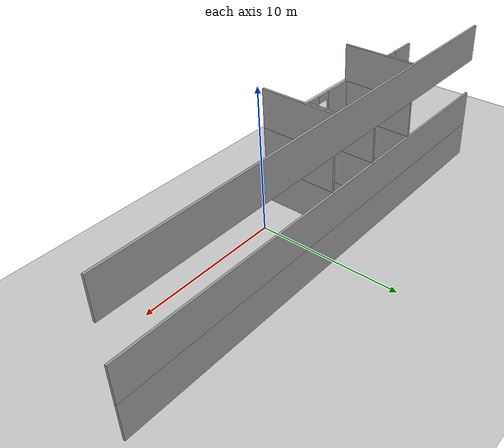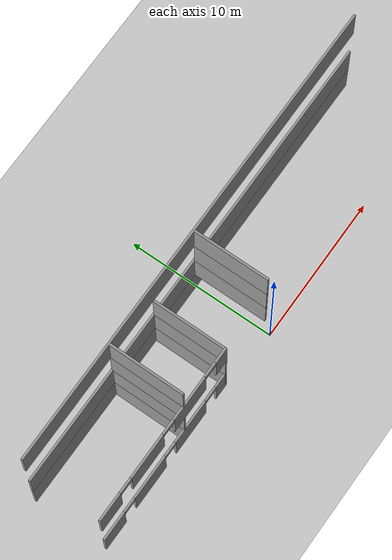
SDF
<sdf version="1.7">
 <world name="default">
  <model name="ground_plane">
   <static>1</static>
   <link name="link">
    <collision name="collision">
     <geometry><plane><normal>0 0 1</normal><size>100 100</size></plane></geometry>
     <surface>
      <contact><collide_bitmask>65535</collide_bitmask></contact>
      <friction><ode><mu>100</mu><mu2>50</mu2></ode></friction>
     </surface>
    </collision>
    <visual name="visual">
     <cast_shadows>0</cast_shadows>
     <geometry><plane><normal>0 0 1</normal><size>100 100</size></plane></geometry>
     <material>
      <script><uri>file://media/materials/scripts/gazebo.material</uri><name>Gazebo/Grey</name></script>
     </material>
    </visual>
   </link>
  </model>
  <model name="floor4plan_transp">
   <link name="Wall_0">
    <pose>0 6.175 0 0 -0 0</pose>
    <visual name="Wall_0_Visual">
     <pose>0 0 1.25 0 -0 0</pose>
     <geometry><box><size>32 0.15 2.5</size></box></geometry>
     <material>
      <script><uri>file://media/materials/scripts/gazebo.material</uri><name>Gazebo/Grey</name></script>
      <ambient>1 1 1 1</ambient>
      <shader type="pixel"/>
     </material>
     <meta><layer>0</layer></meta>
    </visual>
    <collision name="Wall_0_Collision">
     <pose>0 0 1.25 0 -0 0</pose>
     <geometry><box><size>32 0.15 2.5</size></box></geometry>
     <surface>
      <friction>
       <ode><mu>1</mu><mu2>1</mu2><fdir1>0 0 0</fdir1><slip1>0</slip1><slip2>0</slip2></ode>
       <torsional>
        <coefficient>1</coefficient>
        <patch_radius>0</patch_radius>
        <surface_radius>0</surface_radius>
        <use_patch_radius>1</use_patch_radius>
        <ode><slip>0</slip></ode>
       </torsional>
      </friction>
      <bounce><restitution_coefficient>0</restitution_coefficient><threshold>1e+06</threshold></bounce>
      <contact>
       <collide_without_contact>0</collide_without_contact>
       <collide_without_contact_bitmask>1</collide_without_contact_bitmask>
       <collide_bitmask>1</collide_bitmask>
       <ode>
        <soft_cfm>0</soft_cfm>
        <soft_erp>0.2</soft_erp>
        <kp>1e+13</kp>
        <kd>1</kd>
        <max_vel>0.01</max_vel>
        <min_depth>0</min_depth>
       </ode>
       <bullet>
        <split_impulse>1</split_impulse>
        <split_impulse_penetration_threshold>-0.01</split_impulse_penetration_threshold>
        <soft_cfm>0</soft_cfm>
        <soft_erp>0.2</soft_erp>
        <kp>1e+13</kp>
        <kd>1</kd>
       </bullet>
      </contact>
     </surface>
    </collision>
   </link>
   <link name="Wall_100">
    <pose>0 6.175 7.5 0 -0 0</pose>
    <visual name="Wall_100_Visual">
     <pose>0 0 1.25 0 -0 0</pose>
     <geometry><box><size>32 0.15 2.5</size></box></geometry>
     <material>
      <script><uri>file://media/materials/scripts/gazebo.material</uri><name>Gazebo/Grey</name></script>
      <ambient>1 1 1 1</ambient>
      <shader type="pixel"/>
     </material>
     <meta><layer>3</layer></meta>
    </visual>
    <collision name="Wall_100_Collision">
     <pose>0 0 1.25 0 -0 0</pose>
     <geometry><box><size>32 0.15 2.5</size></box></geometry>
     <surface>
      <friction>
       <ode><mu>1</mu><mu2>1</mu2><fdir1>0 0 0</fdir1><slip1>0</slip1><slip2>0</slip2></ode>
       <torsional>
        <coefficient>1</coefficient>
        <patch_radius>0</patch_radius>
        <surface_radius>0</surface_radius>
        <use_patch_radius>1</use_patch_radius>
        <ode><slip>0</slip></ode>
       </torsional>
      </friction>
      <bounce><restitution_coefficient>0</restitution_coefficient><threshold>1e+06</threshold></bounce>
      <contact>
       <collide_without_contact>0</collide_without_contact>
       <collide_without_contact_bitmask>1</collide_without_contact_bitmask>
       <collide_bitmask>1</collide_bitmask>
       <ode>
        <soft_cfm>0</soft_cfm>
        <soft_erp>0.2</soft_erp>
        <kp>1e+13</kp>
        <kd>1</kd>
        <max_vel>0.01</max_vel>
        <min_depth>0</min_depth>
       </ode>
       <bullet>
        <split_impulse>1</split_impulse>
        <split_impulse_penetration_threshold>-0.01</split_impulse_penetration_threshold>
        <soft_cfm>0</soft_cfm>
        <soft_erp>0.2</soft_erp>
        <kp>1e+13</kp>
        <kd>1</kd>
       </bullet>
      </contact>
     </surface>
    </collision>
   </link>
   <link name="Wall_108">
    <pose>-8.04832 3.67238 7.5 0 0 -1.5708</pose>
    <visual name="Wall_108_Visual">
     <pose>0 0 1.25 0 -0 0</pose>
     <geometry><box><size>5 0.15 2.5</size></box></geometry>
     <material>
      <script><uri>file://media/materials/scripts/gazebo.material</uri><name>Gazebo/Grey</name></script>
      <ambient>1 1 1 1</ambient>
      <shader type="pixel"/>
     </material>
     <meta><layer>3</layer></meta>
    </visual>
    <collision name="Wall_108_Collision">
     <pose>0 0 1.25 0 -0 0</pose>
     <geometry><box><size>5 0.15 2.5</size></box></geometry>
     <surface>
      <friction>
       <ode><mu>1</mu><mu2>1</mu2><fdir1>0 0 0</fdir1><slip1>0</slip1><slip2>0</slip2></ode>
       <torsional>
        <coefficient>1</coefficient>
        <patch_radius>0</patch_radius>
        <surface_radius>0</surface_radius>
        <use_patch_radius>1</use_patch_radius>
        <ode><slip>0</slip></ode>
       </torsional>
      </friction>
      <bounce><restitution_coefficient>0</restitution_coefficient><threshold>1e+06</threshold></bounce>
      <contact>
       <collide_without_contact>0</collide_without_contact>
       <collide_without_contact_bitmask>1</collide_without_contact_bitmask>
       <collide_bitmask>1</collide_bitmask>
       <ode>
        <soft_cfm>0</soft_cfm>
        <soft_erp>0.2</soft_erp>
        <kp>1e+13</kp>
        <kd>1</kd>
        <max_vel>0.01</max_vel>
        <min_depth>0</min_depth>
       </ode>
       <bullet>
        <split_impulse>1</split_impulse>
        <split_impulse_penetration_threshold>-0.01</split_impulse_penetration_threshold>
        <soft_cfm>0</soft_cfm>
        <soft_erp>0.2</soft_erp>
        <kp>1e+13</kp>
        <kd>1</kd>
       </bullet>
      </contact>
     </surface>
    </collision>
   </link>
   <link name="Wall_110">
    <pose>-0.021996 3.62612 7.5 0 0 -1.5708</pose>
    <visual name="Wall_110_Visual">
     <pose>0 0 1.25 0 -0 0</pose>
     <geometry><box><size>5 0.15 2.5</size></box></geometry>
     <material>
      <script><uri>file://media/materials/scripts/gazebo.material</uri><name>Gazebo/Grey</name></script>
      <ambient>1 1 1 1</ambient>
      <shader type="pixel"/>
     </material>
     <meta><layer>3</layer></meta>
    </visual>
    <collision name="Wall_110_Collision">
     <pose>0 0 1.25 0 -0 0</pose>
     <geometry><box><size>5 0.15 2.5</size></box></geometry>
     <surface>
      <friction>
       <ode><mu>1</mu><mu2>1</mu2><fdir1>0 0 0</fdir1><slip1>0</slip1><slip2>0</slip2></ode>
       <torsional>
        <coefficient>1</coefficient>
        <patch_radius>0</patch_radius>
        <surface_radius>0</surface_radius>
        <use_patch_radius>1</use_patch_radius>
        <ode><slip>0</slip></ode>
       </torsional>
      </friction>
      <bounce><restitution_coefficient>0</restitution_coefficient><threshold>1e+06</threshold></bounce>
      <contact>
       <collide_without_contact>0</collide_without_contact>
       <collide_without_contact_bitmask>1</collide_without_contact_bitmask>
       <collide_bitmask>1</collide_bitmask>
       <ode>
        <soft_cfm>0</soft_cfm>
        <soft_erp>0.2</soft_erp>
        <kp>1e+13</kp>
        <kd>1</kd>
        <max_vel>0.01</max_vel>
        <min_depth>0</min_depth>
       </ode>
       <bullet>
        <split_impulse>1</split_impulse>
        <split_impulse_penetration_threshold>-0.01</split_impulse_penetration_threshold>
        <soft_cfm>0</soft_cfm>
        <soft_erp>0.2</soft_erp>
        <kp>1e+13</kp>
        <kd>1</kd>
       </bullet>
      </contact>
     </surface>
    </collision>
   </link>
   <link name="Wall_17">
    <pose>-8.04832 3.67238 0 0 0 -1.5708</pose>
    <visual name="Wall_17_Visual">
     <pose>0 0 1.25 0 -0 0</pose>
     <geometry><box><size>5 0.15 2.5</size></box></geometry>
     <material>
      <script><uri>file://media/materials/scripts/gazebo.material</uri><name>Gazebo/Grey</name></script>
      <ambient>1 1 1 1</ambient>
      <shader type="pixel"/>
     </material>
     <meta><layer>0</layer></meta>
    </visual>
    <collision name="Wall_17_Collision">
     <pose>0 0 1.25 0 -0 0</pose>
     <geometry><box><size>5 0.15 2.5</size></box></geometry>
     <surface>
      <friction>
       <ode><mu>1</mu><mu2>1</mu2><fdir1>0 0 0</fdir1><slip1>0</slip1><slip2>0</slip2></ode>
       <torsional>
        <coefficient>1</coefficient>
        <patch_radius>0</patch_radius>
        <surface_radius>0</surface_radius>
        <use_patch_radius>1</use_patch_radius>
        <ode><slip>0</slip></ode>
       </torsional>
      </friction>
      <bounce><restitution_coefficient>0</restitution_coefficient><threshold>1e+06</threshold></bounce>
      <contact>
       <collide_without_contact>0</collide_without_contact>
       <collide_without_contact_bitmask>1</collide_without_contact_bitmask>
       <collide_bitmask>1</collide_bitmask>
       <ode>
        <soft_cfm>0</soft_cfm>
        <soft_erp>0.2</soft_erp>
        <kp>1e+13</kp>
        <kd>1</kd>
        <max_vel>0.01</max_vel>
        <min_depth>0</min_depth>
       </ode>
       <bullet>
        <split_impulse>1</split_impulse>
        <split_impulse_penetration_threshold>-0.01</split_impulse_penetration_threshold>
        <soft_cfm>0</soft_cfm>
        <soft_erp>0.2</soft_erp>
        <kp>1e+13</kp>
        <kd>1</kd>
       </bullet>
      </contact>
     </surface>
    </collision>
   </link>
   <link name="Wall_19">
    <pose>-4.01646 3.64183 0 0 0 -1.5708</pose>
    <visual name="Wall_19_Visual">
     <pose>0 0 1.25 0 -0 0</pose>
     <geometry><box><size>5 0.15 2.5</size></box></geometry>
     <material>
      <script><uri>file://media/materials/scripts/gazebo.material</uri><name>Gazebo/Grey</name></script>
      <ambient>1 1 1 1</ambient>
      <shader type="pixel"/>
     </material>
     <meta><layer>0</layer></meta>
    </visual>
    <collision name="Wall_19_Collision">
     <pose>0 0 1.25 0 -0 0</pose>
     <geometry><box><size>5 0.15 2.5</size></box></geometry>
     <surface>
      <friction>
       <ode><mu>1</mu><mu2>1</mu2><fdir1>0 0 0</fdir1><slip1>0</slip1><slip2>0</slip2></ode>
       <torsional>
        <coefficient>1</coefficient>
        <patch_radius>0</patch_radius>
        <surface_radius>0</surface_radius>
        <use_patch_radius>1</use_patch_radius>
        <ode><slip>0</slip></ode>
       </torsional>
      </friction>
      <bounce><restitution_coefficient>0</restitution_coefficient><threshold>1e+06</threshold></bounce>
      <contact>
       <collide_without_contact>0</collide_without_contact>
       <collide_without_contact_bitmask>1</collide_without_contact_bitmask>
       <collide_bitmask>1</collide_bitmask>
       <ode>
        <soft_cfm>0</soft_cfm>
        <soft_erp>0.2</soft_erp>
        <kp>1e+13</kp>
        <kd>1</kd>
        <max_vel>0.01</max_vel>
        <min_depth>0</min_depth>
       </ode>
       <bullet>
        <split_impulse>1</split_impulse>
        <split_impulse_penetration_threshold>-0.01</split_impulse_penetration_threshold>
        <soft_cfm>0</soft_cfm>
        <soft_erp>0.2</soft_erp>
        <kp>1e+13</kp>
        <kd>1</kd>
       </bullet>
      </contact>
     </surface>
    </collision>
   </link>
   <link name="Wall_50">
    <pose>0 6.175 2.5 0 -0 0</pose>
    <visual name="Wall_50_Visual">
     <pose>0 0 1.25 0 -0 0</pose>
     <geometry><box><size>32 0.15 2.5</size></box></geometry>
     <material>
      <script><uri>file://media/materials/scripts/gazebo.material</uri><name>Gazebo/Grey</name></script>
      <ambient>1 1 1 1</ambient>
      <shader type="pixel"/>
     </material>
     <meta><layer>1</layer></meta>
    </visual>
    <collision name="Wall_50_Collision">
     <pose>0 0 1.25 0 -0 0</pose>
     <geometry><box><size>32 0.15 2.5</size></box></geometry>
     <surface>
      <friction>
       <ode><mu>1</mu><mu2>1</mu2><fdir1>0 0 0</fdir1><slip1>0</slip1><slip2>0</slip2></ode>
       <torsional>
        <coefficient>1</coefficient>
        <patch_radius>0</patch_radius>
        <surface_radius>0</surface_radius>
        <use_patch_radius>1</use_patch_radius>
        <ode><slip>0</slip></ode>
       </torsional>
      </friction>
      <bounce><restitution_coefficient>0</restitution_coefficient><threshold>1e+06</threshold></bounce>
      <contact>
       <collide_without_contact>0</collide_without_contact>
       <collide_without_contact_bitmask>1</collide_without_contact_bitmask>
       <collide_bitmask>1</collide_bitmask>
       <ode>
        <soft_cfm>0</soft_cfm>
        <soft_erp>0.2</soft_erp>
        <kp>1e+13</kp>
        <kd>1</kd>
        <max_vel>0.01</max_vel>
        <min_depth>0</min_depth>
       </ode>
       <bullet>
        <split_impulse>1</split_impulse>
        <split_impulse_penetration_threshold>-0.01</split_impulse_penetration_threshold>
        <soft_cfm>0</soft_cfm>
        <soft_erp>0.2</soft_erp>
        <kp>1e+13</kp>
        <kd>1</kd>
       </bullet>
      </contact>
     </surface>
    </collision>
   </link>
   <link name="Wall_58">
    <pose>-8.04832 3.67238 2.5 0 0 -1.5708</pose>
    <visual name="Wall_58_Visual">
     <pose>0 0 1.25 0 -0 0</pose>
     <geometry><box><size>5 0.15 2.5</size></box></geometry>
     <material>
      <script><uri>file://media/materials/scripts/gazebo.material</uri><name>Gazebo/Grey</name></script>
      <ambient>1 1 1 1</ambient>
      <shader type="pixel"/>
     </material>
     <meta><layer>1</layer></meta>
    </visual>
    <collision name="Wall_58_Collision">
     <pose>0 0 1.25 0 -0 0</pose>
     <geometry><box><size>5 0.15 2.5</size></box></geometry>
     <surface>
      <friction>
       <ode><mu>1</mu><mu2>1</mu2><fdir1>0 0 0</fdir1><slip1>0</slip1><slip2>0</slip2></ode>
       <torsional>
        <coefficient>1</coefficient>
        <patch_radius>0</patch_radius>
        <surface_radius>0</surface_radius>
        <use_patch_radius>1</use_patch_radius>
        <ode><slip>0</slip></ode>
       </torsional>
      </friction>
      <bounce><restitution_coefficient>0</restitution_coefficient><threshold>1e+06</threshold></bounce>
      <contact>
       <collide_without_contact>0</collide_without_contact>
       <collide_without_contact_bitmask>1</collide_without_contact_bitmask>
       <collide_bitmask>1</collide_bitmask>
       <ode>
        <soft_cfm>0</soft_cfm>
        <soft_erp>0.2</soft_erp>
        <kp>1e+13</kp>
        <kd>1</kd>
        <max_vel>0.01</max_vel>
        <min_depth>0</min_depth>
       </ode>
       <bullet>
        <split_impulse>1</split_impulse>
        <split_impulse_penetration_threshold>-0.01</split_impulse_penetration_threshold>
        <soft_cfm>0</soft_cfm>
        <soft_erp>0.2</soft_erp>
        <kp>1e+13</kp>
        <kd>1</kd>
       </bullet>
      </contact>
     </surface>
    </collision>
   </link>
   <link name="Wall_59">
    <pose>-4.01646 3.64183 2.5 0 0 -1.5708</pose>
    <visual name="Wall_59_Visual">
     <pose>0 0 1.25 0 -0 0</pose>
     <geometry><box><size>5 0.15 2.5</size></box></geometry>
     <material>
      <script><uri>file://media/materials/scripts/gazebo.material</uri><name>Gazebo/Grey</name></script>
      <ambient>1 1 1 1</ambient>
      <shader type="pixel"/>
     </material>
     <meta><layer>1</layer></meta>
    </visual>
    <collision name="Wall_59_Collision">
     <pose>0 0 1.25 0 -0 0</pose>
     <geometry><box><size>5 0.15 2.5</size></box></geometry>
     <surface>
      <friction>
       <ode><mu>1</mu><mu2>1</mu2><fdir1>0 0 0</fdir1><slip1>0</slip1><slip2>0</slip2></ode>
       <torsional>
        <coefficient>1</coefficient>
        <patch_radius>0</patch_radius>
        <surface_radius>0</surface_radius>
        <use_patch_radius>1</use_patch_radius>
        <ode><slip>0</slip></ode>
       </torsional>
      </friction>
      <bounce><restitution_coefficient>0</restitution_coefficient><threshold>1e+06</threshold></bounce>
      <contact>
       <collide_without_contact>0</collide_without_contact>
       <collide_without_contact_bitmask>1</collide_without_contact_bitmask>
       <collide_bitmask>1</collide_bitmask>
       <ode>
        <soft_cfm>0</soft_cfm>
        <soft_erp>0.2</soft_erp>
        <kp>1e+13</kp>
        <kd>1</kd>
        <max_vel>0.01</max_vel>
        <min_depth>0</min_depth>
       </ode>
       <bullet>
        <split_impulse>1</split_impulse>
        <split_impulse_penetration_threshold>-0.01</split_impulse_penetration_threshold>
        <soft_cfm>0</soft_cfm>
        <soft_erp>0.2</soft_erp>
        <kp>1e+13</kp>
        <kd>1</kd>
       </bullet>
      </contact>
     </surface>
    </collision>
   </link>
   <link name="Wall_6">
    <pose>-9.94146 1.21683 0 0 -0 0</pose>
    <visual name="Wall_6_Visual_0">
     <pose>-5.02127 0 1.25 0 -0 0</pose>
     <geometry><box><size>1.95745 0.15 2.5</size></box></geometry>
     <material>
      <script><uri>file://media/materials/scripts/gazebo.material</uri><name>Gazebo/Grey</name></script>
      <ambient>1 1 1 1</ambient>
      <shader type="pixel"/>
     </material>
     <meta><layer>0</layer></meta>
    </visual>
    <visual name="Wall_6_Visual_1">
     <pose>-1.55332 0 1.25 0 -0 0</pose>
     <geometry><box><size>2.97846 0.15 2.5</size></box></geometry>
     <material>
      <script><uri>file://media/materials/scripts/gazebo.material</uri><name>Gazebo/Grey</name></script>
      <ambient>1 1 1 1</ambient>
      <shader type="pixel"/>
     </material>
     <meta><layer>0</layer></meta>
    </visual>
    <visual name="Wall_6_Visual_6">
     <pose>4.43751 0 2.25 0 -0 0</pose>
     <geometry><box><size>1 0.15 0.5</size></box></geometry>
     <material>
      <script><uri>file://media/materials/scripts/gazebo.material</uri><name>Gazebo/Grey</name></script>
      <ambient>1 1 1 1</ambient>
      <shader type="pixel"/>
     </material>
     <meta><layer>0</layer></meta>
    </visual>
    <visual name="Wall_6_Visual_2">
     <pose>2.43671 0 1.25 0 -0 0</pose>
     <geometry><box><size>3.0016 0.15 2.5</size></box></geometry>
     <material>
      <script><uri>file://media/materials/scripts/gazebo.material</uri><name>Gazebo/Grey</name></script>
      <ambient>1 1 1 1</ambient>
      <shader type="pixel"/>
     </material>
     <meta><layer>0</layer></meta>
    </visual>
    <visual name="Wall_6_Visual_3">
     <pose>5.46876 0 1.25 0 -0 0</pose>
     <geometry><box><size>1.06249 0.15 2.5</size></box></geometry>
     <material>
      <script><uri>file://media/materials/scripts/gazebo.material</uri><name>Gazebo/Grey</name></script>
      <ambient>1 1 1 1</ambient>
      <shader type="pixel"/>
     </material>
     <meta><layer>0</layer></meta>
    </visual>
    <visual name="Wall_6_Visual_4">
     <pose>-3.54255 0 2.25 0 -0 0</pose>
     <geometry><box><size>1 0.15 0.5</size></box></geometry>
     <material>
      <script><uri>file://media/materials/scripts/gazebo.material</uri><name>Gazebo/Grey</name></script>
      <ambient>1 1 1 1</ambient>
      <shader type="pixel"/>
     </material>
     <meta><layer>0</layer></meta>
    </visual>
    <visual name="Wall_6_Visual_5">
     <pose>0.435918 0 2.25 0 -0 0</pose>
     <geometry><box><size>1 0.15 0.5</size></box></geometry>
     <material>
      <script><uri>file://media/materials/scripts/gazebo.material</uri><name>Gazebo/Grey</name></script>
      <ambient>1 1 1 1</ambient>
      <shader type="pixel"/>
     </material>
     <meta><layer>0</layer></meta>
    </visual>
    <collision name="Wall_6_Collision_0">
     <pose>-5.02127 0 1.25 0 -0 0</pose>
     <geometry><box><size>1.95745 0.15 2.5</size></box></geometry>
     <surface>
      <friction>
       <ode><mu>1</mu><mu2>1</mu2><fdir1>0 0 0</fdir1><slip1>0</slip1><slip2>0</slip2></ode>
       <torsional>
        <coefficient>1</coefficient>
        <patch_radius>0</patch_radius>
        <surface_radius>0</surface_radius>
        <use_patch_radius>1</use_patch_radius>
        <ode><slip>0</slip></ode>
       </torsional>
      </friction>
      <bounce><restitution_coefficient>0</restitution_coefficient><threshold>1e+06</threshold></bounce>
      <contact>
       <collide_without_contact>0</collide_without_contact>
       <collide_without_contact_bitmask>1</collide_without_contact_bitmask>
       <collide_bitmask>1</collide_bitmask>
       <ode>
        <soft_cfm>0</soft_cfm>
        <soft_erp>0.2</soft_erp>
        <kp>1e+13</kp>
        <kd>1</kd>
        <max_vel>0.01</max_vel>
        <min_depth>0</min_depth>
       </ode>
       <bullet>
        <split_impulse>1</split_impulse>
        <split_impulse_penetration_threshold>-0.01</split_impulse_penetration_threshold>
        <soft_cfm>0</soft_cfm>
        <soft_erp>0.2</soft_erp>
        <kp>1e+13</kp>
        <kd>1</kd>
       </bullet>
      </contact>
     </surface>
    </collision>
    <collision name="Wall_6_Collision_2">
     <pose>2.43671 0 1.25 0 -0 0</pose>
     <geometry><box><size>3.0016 0.15 2.5</size></box></geometry>
     <surface>
      <friction>
       <ode><mu>1</mu><mu2>1</mu2><fdir1>0 0 0</fdir1><slip1>0</slip1><slip2>0</slip2></ode>
       <torsional>
        <coefficient>1</coefficient>
        <patch_radius>0</patch_radius>
        <surface_radius>0</surface_radius>
        <use_patch_radius>1</use_patch_radius>
        <ode><slip>0</slip></ode>
       </torsional>
      </friction>
      <bounce><restitution_coefficient>0</restitution_coefficient><threshold>1e+06</threshold></bounce>
      <contact>
       <collide_without_contact>0</collide_without_contact>
       <collide_without_contact_bitmask>1</collide_without_contact_bitmask>
       <collide_bitmask>1</collide_bitmask>
       <ode>
        <soft_cfm>0</soft_cfm>
        <soft_erp>0.2</soft_erp>
        <kp>1e+13</kp>
        <kd>1</kd>
        <max_vel>0.01</max_vel>
        <min_depth>0</min_depth>
       </ode>
       <bullet>
        <split_impulse>1</split_impulse>
        <split_impulse_penetration_threshold>-0.01</split_impulse_penetration_threshold>
        <soft_cfm>0</soft_cfm>
        <soft_erp>0.2</soft_erp>
        <kp>1e+13</kp>
        <kd>1</kd>
       </bullet>
      </contact>
     </surface>
    </collision>
    <collision name="Wall_6_Collision_1">
     <pose>-1.55332 0 1.25 0 -0 0</pose>
     <geometry><box><size>2.97846 0.15 2.5</size></box></geometry>
     <surface>
      <friction>
       <ode><mu>1</mu><mu2>1</mu2><fdir1>0 0 0</fdir1><slip1>0</slip1><slip2>0</slip2></ode>
       <torsional>
        <coefficient>1</coefficient>
        <patch_radius>0</patch_radius>
        <surface_radius>0</surface_radius>
        <use_patch_radius>1</use_patch_radius>
        <ode><slip>0</slip></ode>
       </torsional>
      </friction>
      <bounce><restitution_coefficient>0</restitution_coefficient><threshold>1e+06</threshold></bounce>
      <contact>
       <collide_without_contact>0</collide_without_contact>
       <collide_without_contact_bitmask>1</collide_without_contact_bitmask>
       <collide_bitmask>1</collide_bitmask>
       <ode>
        <soft_cfm>0</soft_cfm>
        <soft_erp>0.2</soft_erp>
        <kp>1e+13</kp>
        <kd>1</kd>
        <max_vel>0.01</max_vel>
        <min_depth>0</min_depth>
       </ode>
       <bullet>
        <split_impulse>1</split_impulse>
        <split_impulse_penetration_threshold>-0.01</split_impulse_penetration_threshold>
        <soft_cfm>0</soft_cfm>
        <soft_erp>0.2</soft_erp>
        <kp>1e+13</kp>
        <kd>1</kd>
       </bullet>
      </contact>
     </surface>
    </collision>
    <collision name="Wall_6_Collision_3">
     <pose>5.46876 0 1.25 0 -0 0</pose>
     <geometry><box><size>1.06249 0.15 2.5</size></box></geometry>
     <surface>
      <friction>
       <ode><mu>1</mu><mu2>1</mu2><fdir1>0 0 0</fdir1><slip1>0</slip1><slip2>0</slip2></ode>
       <torsional>
        <coefficient>1</coefficient>
        <patch_radius>0</patch_radius>
        <surface_radius>0</surface_radius>
        <use_patch_radius>1</use_patch_radius>
        <ode><slip>0</slip></ode>
       </torsional>
      </friction>
      <bounce><restitution_coefficient>0</restitution_coefficient><threshold>1e+06</threshold></bounce>
      <contact>
       <collide_without_contact>0</collide_without_contact>
       <collide_without_contact_bitmask>1</collide_without_contact_bitmask>
       <collide_bitmask>1</collide_bitmask>
       <ode>
        <soft_cfm>0</soft_cfm>
        <soft_erp>0.2</soft_erp>
        <kp>1e+13</kp>
        <kd>1</kd>
        <max_vel>0.01</max_vel>
        <min_depth>0</min_depth>
       </ode>
       <bullet>
        <split_impulse>1</split_impulse>
        <split_impulse_penetration_threshold>-0.01</split_impulse_penetration_threshold>
        <soft_cfm>0</soft_cfm>
        <soft_erp>0.2</soft_erp>
        <kp>1e+13</kp>
        <kd>1</kd>
       </bullet>
      </contact>
     </surface>
    </collision>
    <collision name="Wall_6_Collision_4">
     <pose>-3.54255 0 2.25 0 -0 0</pose>
     <geometry><box><size>1 0.15 0.5</size></box></geometry>
     <surface>
      <friction>
       <ode><mu>1</mu><mu2>1</mu2><fdir1>0 0 0</fdir1><slip1>0</slip1><slip2>0</slip2></ode>
       <torsional>
        <coefficient>1</coefficient>
        <patch_radius>0</patch_radius>
        <surface_radius>0</surface_radius>
        <use_patch_radius>1</use_patch_radius>
        <ode><slip>0</slip></ode>
       </torsional>
      </friction>
      <bounce><restitution_coefficient>0</restitution_coefficient><threshold>1e+06</threshold></bounce>
      <contact>
       <collide_without_contact>0</collide_without_contact>
       <collide_without_contact_bitmask>1</collide_without_contact_bitmask>
       <collide_bitmask>1</collide_bitmask>
       <ode>
        <soft_cfm>0</soft_cfm>
        <soft_erp>0.2</soft_erp>
        <kp>1e+13</kp>
        <kd>1</kd>
        <max_vel>0.01</max_vel>
        <min_depth>0</min_depth>
       </ode>
       <bullet>
        <split_impulse>1</split_impulse>
        <split_impulse_penetration_threshold>-0.01</split_impulse_penetration_threshold>
        <soft_cfm>0</soft_cfm>
        <soft_erp>0.2</soft_erp>
        <kp>1e+13</kp>
        <kd>1</kd>
       </bullet>
      </contact>
     </surface>
    </collision>
    <collision name="Wall_6_Collision_5">
     <pose>0.435918 0 2.25 0 -0 0</pose>
     <geometry><box><size>1 0.15 0.5</size></box></geometry>
     <surface>
      <friction>
       <ode><mu>1</mu><mu2>1</mu2><fdir1>0 0 0</fdir1><slip1>0</slip1><slip2>0</slip2></ode>
       <torsional>
        <coefficient>1</coefficient>
        <patch_radius>0</patch_radius>
        <surface_radius>0</surface_radius>
        <use_patch_radius>1</use_patch_radius>
        <ode><slip>0</slip></ode>
       </torsional>
      </friction>
      <bounce><restitution_coefficient>0</restitution_coefficient><threshold>1e+06</threshold></bounce>
      <contact>
       <collide_without_contact>0</collide_without_contact>
       <collide_without_contact_bitmask>1</collide_without_contact_bitmask>
       <collide_bitmask>1</collide_bitmask>
       <ode>
        <soft_cfm>0</soft_cfm>
        <soft_erp>0.2</soft_erp>
        <kp>1e+13</kp>
        <kd>1</kd>
        <max_vel>0.01</max_vel>
        <min_depth>0</min_depth>
       </ode>
       <bullet>
        <split_impulse>1</split_impulse>
        <split_impulse_penetration_threshold>-0.01</split_impulse_penetration_threshold>
        <soft_cfm>0</soft_cfm>
        <soft_erp>0.2</soft_erp>
        <kp>1e+13</kp>
        <kd>1</kd>
       </bullet>
      </contact>
     </surface>
    </collision>
    <collision name="Wall_6_Collision_6">
     <pose>4.43751 0 2.25 0 -0 0</pose>
     <geometry><box><size>1 0.15 0.5</size></box></geometry>
     <surface>
      <friction>
       <ode><mu>1</mu><mu2>1</mu2><fdir1>0 0 0</fdir1><slip1>0</slip1><slip2>0</slip2></ode>
       <torsional>
        <coefficient>1</coefficient>
        <patch_radius>0</patch_radius>
        <surface_radius>0</surface_radius>
        <use_patch_radius>1</use_patch_radius>
        <ode><slip>0</slip></ode>
       </torsional>
      </friction>
      <bounce><restitution_coefficient>0</restitution_coefficient><threshold>1e+06</threshold></bounce>
      <contact>
       <collide_without_contact>0</collide_without_contact>
       <collide_without_contact_bitmask>1</collide_without_contact_bitmask>
       <collide_bitmask>1</collide_bitmask>
       <ode>
        <soft_cfm>0</soft_cfm>
        <soft_erp>0.2</soft_erp>
        <kp>1e+13</kp>
        <kd>1</kd>
        <max_vel>0.01</max_vel>
        <min_depth>0</min_depth>
       </ode>
       <bullet>
        <split_impulse>1</split_impulse>
        <split_impulse_penetration_threshold>-0.01</split_impulse_penetration_threshold>
        <soft_cfm>0</soft_cfm>
        <soft_erp>0.2</soft_erp>
        <kp>1e+13</kp>
        <kd>1</kd>
       </bullet>
      </contact>
     </surface>
    </collision>
   </link>
   <link name="Wall_60">
    <pose>-0.021996 3.62612 2.5 0 0 -1.5708</pose>
    <visual name="Wall_60_Visual">
     <pose>0 0 1.25 0 -0 0</pose>
     <geometry><box><size>5 0.15 2.5</size></box></geometry>
     <material>
      <script><uri>file://media/materials/scripts/gazebo.material</uri><name>Gazebo/Grey</name></script>
      <ambient>1 1 1 1</ambient>
      <shader type="pixel"/>
     </material>
     <meta><layer>1</layer></meta>
    </visual>
    <collision name="Wall_60_Collision">
     <pose>0 0 1.25 0 -0 0</pose>
     <geometry><box><size>5 0.15 2.5</size></box></geometry>
     <surface>
      <friction>
       <ode><mu>1</mu><mu2>1</mu2><fdir1>0 0 0</fdir1><slip1>0</slip1><slip2>0</slip2></ode>
       <torsional>
        <coefficient>1</coefficient>
        <patch_radius>0</patch_radius>
        <surface_radius>0</surface_radius>
        <use_patch_radius>1</use_patch_radius>
        <ode><slip>0</slip></ode>
       </torsional>
      </friction>
      <bounce><restitution_coefficient>0</restitution_coefficient><threshold>1e+06</threshold></bounce>
      <contact>
       <collide_without_contact>0</collide_without_contact>
       <collide_without_contact_bitmask>1</collide_without_contact_bitmask>
       <collide_bitmask>1</collide_bitmask>
       <ode>
        <soft_cfm>0</soft_cfm>
        <soft_erp>0.2</soft_erp>
        <kp>1e+13</kp>
        <kd>1</kd>
        <max_vel>0.01</max_vel>
        <min_depth>0</min_depth>
       </ode>
       <bullet>
        <split_impulse>1</split_impulse>
        <split_impulse_penetration_threshold>-0.01</split_impulse_penetration_threshold>
        <soft_cfm>0</soft_cfm>
        <soft_erp>0.2</soft_erp>
        <kp>1e+13</kp>
        <kd>1</kd>
       </bullet>
      </contact>
     </surface>
    </collision>
   </link>
   <link name="Wall_79">
    <pose>-9.94146 1.21683 5 0 -0 0</pose>
    <visual name="Wall_79_Visual_0">
     <pose>-5.04441 0 1.25 0 -0 0</pose>
     <geometry><box><size>1.91119 0.15 2.5</size></box></geometry>
     <material>
      <script><uri>file://media/materials/scripts/gazebo.material</uri><name>Gazebo/Grey</name></script>
      <ambient>1 1 1 1</ambient>
      <shader type="pixel"/>
     </material>
     <meta><layer>2</layer></meta>
    </visual>
    <visual name="Wall_79_Visual_1">
     <pose>-1.57645 0 1.25 0 -0 0</pose>
     <geometry><box><size>3.02473 0.15 2.5</size></box></geometry>
     <material>
      <script><uri>file://media/materials/scripts/gazebo.material</uri><name>Gazebo/Grey</name></script>
      <ambient>1 1 1 1</ambient>
      <shader type="pixel"/>
     </material>
     <meta><layer>2</layer></meta>
    </visual>
    <visual name="Wall_79_Visual_2">
     <pose>2.43671 0 1.25 0 -0 0</pose>
     <geometry><box><size>3.0016 0.15 2.5</size></box></geometry>
     <material>
      <script><uri>file://media/materials/scripts/gazebo.material</uri><name>Gazebo/Grey</name></script>
      <ambient>1 1 1 1</ambient>
      <shader type="pixel"/>
     </material>
     <meta><layer>2</layer></meta>
    </visual>
    <visual name="Wall_79_Visual_3">
     <pose>5.46876 0 1.25 0 -0 0</pose>
     <geometry><box><size>1.06249 0.15 2.5</size></box></geometry>
     <material>
      <script><uri>file://media/materials/scripts/gazebo.material</uri><name>Gazebo/Grey</name></script>
      <ambient>1 1 1 1</ambient>
      <shader type="pixel"/>
     </material>
     <meta><layer>2</layer></meta>
    </visual>
    <visual name="Wall_79_Visual_4">
     <pose>-3.58881 0 2.25 0 -0 0</pose>
     <geometry><box><size>1 0.15 0.5</size></box></geometry>
     <material>
      <script><uri>file://media/materials/scripts/gazebo.material</uri><name>Gazebo/Grey</name></script>
      <ambient>1 1 1 1</ambient>
      <shader type="pixel"/>
     </material>
     <meta><layer>2</layer></meta>
    </visual>
    <visual name="Wall_79_Visual_5">
     <pose>0.435917 0 2.25 0 -0 0</pose>
     <geometry><box><size>1 0.15 0.5</size></box></geometry>
     <material>
      <script><uri>file://media/materials/scripts/gazebo.material</uri><name>Gazebo/Grey</name></script>
      <ambient>1 1 1 1</ambient>
      <shader type="pixel"/>
     </material>
     <meta><layer>2</layer></meta>
    </visual>
    <visual name="Wall_79_Visual_6">
     <pose>4.43751 0 2.25 0 -0 0</pose>
     <geometry><box><size>1 0.15 0.5</size></box></geometry>
     <material>
      <script><uri>file://media/materials/scripts/gazebo.material</uri><name>Gazebo/Grey</name></script>
      <ambient>1 1 1 1</ambient>
      <shader type="pixel"/>
     </material>
     <meta><layer>2</layer></meta>
    </visual>
    <collision name="Wall_79_Collision_0">
     <pose>-5.04441 0 1.25 0 -0 0</pose>
     <geometry><box><size>1.91119 0.15 2.5</size></box></geometry>
     <surface>
      <friction>
       <ode><mu>1</mu><mu2>1</mu2><fdir1>0 0 0</fdir1><slip1>0</slip1><slip2>0</slip2></ode>
       <torsional>
        <coefficient>1</coefficient>
        <patch_radius>0</patch_radius>
        <surface_radius>0</surface_radius>
        <use_patch_radius>1</use_patch_radius>
        <ode><slip>0</slip></ode>
       </torsional>
      </friction>
      <bounce><restitution_coefficient>0</restitution_coefficient><threshold>1e+06</threshold></bounce>
      <contact>
       <collide_without_contact>0</collide_without_contact>
       <collide_without_contact_bitmask>1</collide_without_contact_bitmask>
       <collide_bitmask>1</collide_bitmask>
       <ode>
        <soft_cfm>0</soft_cfm>
        <soft_erp>0.2</soft_erp>
        <kp>1e+13</kp>
        <kd>1</kd>
        <max_vel>0.01</max_vel>
        <min_depth>0</min_depth>
       </ode>
       <bullet>
        <split_impulse>1</split_impulse>
        <split_impulse_penetration_threshold>-0.01</split_impulse_penetration_threshold>
        <soft_cfm>0</soft_cfm>
        <soft_erp>0.2</soft_erp>
        <kp>1e+13</kp>
        <kd>1</kd>
       </bullet>
      </contact>
     </surface>
    </collision>
    <collision name="Wall_79_Collision_1">
     <pose>-1.57645 0 1.25 0 -0 0</pose>
     <geometry><box><size>3.02473 0.15 2.5</size></box></geometry>
     <surface>
      <friction>
       <ode><mu>1</mu><mu2>1</mu2><fdir1>0 0 0</fdir1><slip1>0</slip1><slip2>0</slip2></ode>
       <torsional>
        <coefficient>1</coefficient>
        <patch_radius>0</patch_radius>
        <surface_radius>0</surface_radius>
        <use_patch_radius>1</use_patch_radius>
        <ode><slip>0</slip></ode>
       </torsional>
      </friction>
      <bounce><restitution_coefficient>0</restitution_coefficient><threshold>1e+06</threshold></bounce>
      <contact>
       <collide_without_contact>0</collide_without_contact>
       <collide_without_contact_bitmask>1</collide_without_contact_bitmask>
       <collide_bitmask>1</collide_bitmask>
       <ode>
        <soft_cfm>0</soft_cfm>
        <soft_erp>0.2</soft_erp>
        <kp>1e+13</kp>
        <kd>1</kd>
        <max_vel>0.01</max_vel>
        <min_depth>0</min_depth>
       </ode>
       <bullet>
        <split_impulse>1</split_impulse>
        <split_impulse_penetration_threshold>-0.01</split_impulse_penetration_threshold>
        <soft_cfm>0</soft_cfm>
        <soft_erp>0.2</soft_erp>
        <kp>1e+13</kp>
        <kd>1</kd>
       </bullet>
      </contact>
     </surface>
    </collision>
    <collision name="Wall_79_Collision_2">
     <pose>2.43671 0 1.25 0 -0 0</pose>
     <geometry><box><size>3.0016 0.15 2.5</size></box></geometry>
     <surface>
      <friction>
       <ode><mu>1</mu><mu2>1</mu2><fdir1>0 0 0</fdir1><slip1>0</slip1><slip2>0</slip2></ode>
       <torsional>
        <coefficient>1</coefficient>
        <patch_radius>0</patch_radius>
        <surface_radius>0</surface_radius>
        <use_patch_radius>1</use_patch_radius>
        <ode><slip>0</slip></ode>
       </torsional>
      </friction>
      <bounce><restitution_coefficient>0</restitution_coefficient><threshold>1e+06</threshold></bounce>
      <contact>
       <collide_without_contact>0</collide_without_contact>
       <collide_without_contact_bitmask>1</collide_without_contact_bitmask>
       <collide_bitmask>1</collide_bitmask>
       <ode>
        <soft_cfm>0</soft_cfm>
        <soft_erp>0.2</soft_erp>
        <kp>1e+13</kp>
        <kd>1</kd>
        <max_vel>0.01</max_vel>
        <min_depth>0</min_depth>
       </ode>
       <bullet>
        <split_impulse>1</split_impulse>
        <split_impulse_penetration_threshold>-0.01</split_impulse_penetration_threshold>
        <soft_cfm>0</soft_cfm>
        <soft_erp>0.2</soft_erp>
        <kp>1e+13</kp>
        <kd>1</kd>
       </bullet>
      </contact>
     </surface>
    </collision>
    <collision name="Wall_79_Collision_4">
     <pose>-3.58881 0 2.25 0 -0 0</pose>
     <geometry><box><size>1 0.15 0.5</size></box></geometry>
     <surface>
      <friction>
       <ode><mu>1</mu><mu2>1</mu2><fdir1>0 0 0</fdir1><slip1>0</slip1><slip2>0</slip2></ode>
       <torsional>
        <coefficient>1</coefficient>
        <patch_radius>0</patch_radius>
        <surface_radius>0</surface_radius>
        <use_patch_radius>1</use_patch_radius>
        <ode><slip>0</slip></ode>
       </torsional>
      </friction>
      <bounce><restitution_coefficient>0</restitution_coefficient><threshold>1e+06</threshold></bounce>
      <contact>
       <collide_without_contact>0</collide_without_contact>
       <collide_without_contact_bitmask>1</collide_without_contact_bitmask>
       <collide_bitmask>1</collide_bitmask>
       <ode>
        <soft_cfm>0</soft_cfm>
        <soft_erp>0.2</soft_erp>
        <kp>1e+13</kp>
        <kd>1</kd>
        <max_vel>0.01</max_vel>
        <min_depth>0</min_depth>
       </ode>
       <bullet>
        <split_impulse>1</split_impulse>
        <split_impulse_penetration_threshold>-0.01</split_impulse_penetration_threshold>
        <soft_cfm>0</soft_cfm>
        <soft_erp>0.2</soft_erp>
        <kp>1e+13</kp>
        <kd>1</kd>
       </bullet>
      </contact>
     </surface>
    </collision>
    <collision name="Wall_79_Collision_3">
     <pose>5.46876 0 1.25 0 -0 0</pose>
     <geometry><box><size>1.06249 0.15 2.5</size></box></geometry>
     <surface>
      <friction>
       <ode><mu>1</mu><mu2>1</mu2><fdir1>0 0 0</fdir1><slip1>0</slip1><slip2>0</slip2></ode>
       <torsional>
        <coefficient>1</coefficient>
        <patch_radius>0</patch_radius>
        <surface_radius>0</surface_radius>
        <use_patch_radius>1</use_patch_radius>
        <ode><slip>0</slip></ode>
       </torsional>
      </friction>
      <bounce><restitution_coefficient>0</restitution_coefficient><threshold>1e+06</threshold></bounce>
      <contact>
       <collide_without_contact>0</collide_without_contact>
       <collide_without_contact_bitmask>1</collide_without_contact_bitmask>
       <collide_bitmask>1</collide_bitmask>
       <ode>
        <soft_cfm>0</soft_cfm>
        <soft_erp>0.2</soft_erp>
        <kp>1e+13</kp>
        <kd>1</kd>
        <max_vel>0.01</max_vel>
        <min_depth>0</min_depth>
       </ode>
       <bullet>
        <split_impulse>1</split_impulse>
        <split_impulse_penetration_threshold>-0.01</split_impulse_penetration_threshold>
        <soft_cfm>0</soft_cfm>
        <soft_erp>0.2</soft_erp>
        <kp>1e+13</kp>
        <kd>1</kd>
       </bullet>
      </contact>
     </surface>
    </collision>
    <collision name="Wall_79_Collision_5">
     <pose>0.435917 0 2.25 0 -0 0</pose>
     <geometry><box><size>1 0.15 0.5</size></box></geometry>
     <surface>
      <friction>
       <ode><mu>1</mu><mu2>1</mu2><fdir1>0 0 0</fdir1><slip1>0</slip1><slip2>0</slip2></ode>
       <torsional>
        <coefficient>1</coefficient>
        <patch_radius>0</patch_radius>
        <surface_radius>0</surface_radius>
        <use_patch_radius>1</use_patch_radius>
        <ode><slip>0</slip></ode>
       </torsional>
      </friction>
      <bounce><restitution_coefficient>0</restitution_coefficient><threshold>1e+06</threshold></bounce>
      <contact>
       <collide_without_contact>0</collide_without_contact>
       <collide_without_contact_bitmask>1</collide_without_contact_bitmask>
       <collide_bitmask>1</collide_bitmask>
       <ode>
        <soft_cfm>0</soft_cfm>
        <soft_erp>0.2</soft_erp>
        <kp>1e+13</kp>
        <kd>1</kd>
        <max_vel>0.01</max_vel>
        <min_depth>0</min_depth>
       </ode>
       <bullet>
        <split_impulse>1</split_impulse>
        <split_impulse_penetration_threshold>-0.01</split_impulse_penetration_threshold>
        <soft_cfm>0</soft_cfm>
        <soft_erp>0.2</soft_erp>
        <kp>1e+13</kp>
        <kd>1</kd>
       </bullet>
      </contact>
     </surface>
    </collision>
    <collision name="Wall_79_Collision_6">
     <pose>4.43751 0 2.25 0 -0 0</pose>
     <geometry><box><size>1 0.15 0.5</size></box></geometry>
     <surface>
      <friction>
       <ode><mu>1</mu><mu2>1</mu2><fdir1>0 0 0</fdir1><slip1>0</slip1><slip2>0</slip2></ode>
       <torsional>
        <coefficient>1</coefficient>
        <patch_radius>0</patch_radius>
        <surface_radius>0</surface_radius>
        <use_patch_radius>1</use_patch_radius>
        <ode><slip>0</slip></ode>
       </torsional>
      </friction>
      <bounce><restitution_coefficient>0</restitution_coefficient><threshold>1e+06</threshold></bounce>
      <contact>
       <collide_without_contact>0</collide_without_contact>
       <collide_without_contact_bitmask>1</collide_without_contact_bitmask>
       <collide_bitmask>1</collide_bitmask>
       <ode>
        <soft_cfm>0</soft_cfm>
        <soft_erp>0.2</soft_erp>
        <kp>1e+13</kp>
        <kd>1</kd>
        <max_vel>0.01</max_vel>
        <min_depth>0</min_depth>
       </ode>
       <bullet>
        <split_impulse>1</split_impulse>
        <split_impulse_penetration_threshold>-0.01</split_impulse_penetration_threshold>
        <soft_cfm>0</soft_cfm>
        <soft_erp>0.2</soft_erp>
        <kp>1e+13</kp>
        <kd>1</kd>
       </bullet>
      </contact>
     </surface>
    </collision>
   </link>
   <link name="Wall_83">
    <pose>-8.04832 3.67238 5 0 0 -1.5708</pose>
    <visual name="Wall_83_Visual">
     <pose>0 0 1.25 0 -0 0</pose>
     <geometry><box><size>5 0.15 2.5</size></box></geometry>
     <material>
      <script><uri>file://media/materials/scripts/gazebo.material</uri><name>Gazebo/Grey</name></script>
      <ambient>1 1 1 1</ambient>
      <shader type="pixel"/>
     </material>
     <meta><layer>2</layer></meta>
    </visual>
    <collision name="Wall_83_Collision">
     <pose>0 0 1.25 0 -0 0</pose>
     <geometry><box><size>5 0.15 2.5</size></box></geometry>
     <surface>
      <friction>
       <ode><mu>1</mu><mu2>1</mu2><fdir1>0 0 0</fdir1><slip1>0</slip1><slip2>0</slip2></ode>
       <torsional>
        <coefficient>1</coefficient>
        <patch_radius>0</patch_radius>
        <surface_radius>0</surface_radius>
        <use_patch_radius>1</use_patch_radius>
        <ode><slip>0</slip></ode>
       </torsional>
      </friction>
      <bounce><restitution_coefficient>0</restitution_coefficient><threshold>1e+06</threshold></bounce>
      <contact>
       <collide_without_contact>0</collide_without_contact>
       <collide_without_contact_bitmask>1</collide_without_contact_bitmask>
       <collide_bitmask>1</collide_bitmask>
       <ode>
        <soft_cfm>0</soft_cfm>
        <soft_erp>0.2</soft_erp>
        <kp>1e+13</kp>
        <kd>1</kd>
        <max_vel>0.01</max_vel>
        <min_depth>0</min_depth>
       </ode>
       <bullet>
        <split_impulse>1</split_impulse>
        <split_impulse_penetration_threshold>-0.01</split_impulse_penetration_threshold>
        <soft_cfm>0</soft_cfm>
        <soft_erp>0.2</soft_erp>
        <kp>1e+13</kp>
        <kd>1</kd>
       </bullet>
      </contact>
     </surface>
    </collision>
   </link>
   <link name="Wall_84">
    <pose>-4.01646 3.64183 5 0 0 -1.5708</pose>
    <visual name="Wall_84_Visual">
     <pose>0 0 1.25 0 -0 0</pose>
     <geometry><box><size>5 0.15 2.5</size></box></geometry>
     <material>
      <script><uri>file://media/materials/scripts/gazebo.material</uri><name>Gazebo/Grey</name></script>
      <ambient>1 1 1 1</ambient>
      <shader type="pixel"/>
     </material>
     <meta><layer>2</layer></meta>
    </visual>
    <collision name="Wall_84_Collision">
     <pose>0 0 1.25 0 -0 0</pose>
     <geometry><box><size>5 0.15 2.5</size></box></geometry>
     <surface>
      <friction>
       <ode><mu>1</mu><mu2>1</mu2><fdir1>0 0 0</fdir1><slip1>0</slip1><slip2>0</slip2></ode>
       <torsional>
        <coefficient>1</coefficient>
        <patch_radius>0</patch_radius>
        <surface_radius>0</surface_radius>
        <use_patch_radius>1</use_patch_radius>
        <ode><slip>0</slip></ode>
       </torsional>
      </friction>
      <bounce><restitution_coefficient>0</restitution_coefficient><threshold>1e+06</threshold></bounce>
      <contact>
       <collide_without_contact>0</collide_without_contact>
       <collide_without_contact_bitmask>1</collide_without_contact_bitmask>
       <collide_bitmask>1</collide_bitmask>
       <ode>
        <soft_cfm>0</soft_cfm>
        <soft_erp>0.2</soft_erp>
        <kp>1e+13</kp>
        <kd>1</kd>
        <max_vel>0.01</max_vel>
        <min_depth>0</min_depth>
       </ode>
       <bullet>
        <split_impulse>1</split_impulse>
        <split_impulse_penetration_threshold>-0.01</split_impulse_penetration_threshold>
        <soft_cfm>0</soft_cfm>
        <soft_erp>0.2</soft_erp>
        <kp>1e+13</kp>
        <kd>1</kd>
       </bullet>
      </contact>
     </surface>
    </collision>
   </link>
   <link name="Wall_85">
    <pose>-0.021996 3.62612 5 0 0 -1.5708</pose>
    <visual name="Wall_85_Visual">
     <pose>0 0 1.25 0 -0 0</pose>
     <geometry><box><size>5 0.15 2.5</size></box></geometry>
     <material>
      <script><uri>file://media/materials/scripts/gazebo.material</uri><name>Gazebo/Grey</name></script>
      <ambient>1 1 1 1</ambient>
      <shader type="pixel"/>
     </material>
     <meta><layer>2</layer></meta>
    </visual>
    <collision name="Wall_85_Collision">
     <pose>0 0 1.25 0 -0 0</pose>
     <geometry><box><size>5 0.15 2.5</size></box></geometry>
     <surface>
      <friction>
       <ode><mu>1</mu><mu2>1</mu2><fdir1>0 0 0</fdir1><slip1>0</slip1><slip2>0</slip2></ode>
       <torsional>
        <coefficient>1</coefficient>
        <patch_radius>0</patch_radius>
        <surface_radius>0</surface_radius>
        <use_patch_radius>1</use_patch_radius>
        <ode><slip>0</slip></ode>
       </torsional>
      </friction>
      <bounce><restitution_coefficient>0</restitution_coefficient><threshold>1e+06</threshold></bounce>
      <contact>
       <collide_without_contact>0</collide_without_contact>
       <collide_without_contact_bitmask>1</collide_without_contact_bitmask>
       <collide_bitmask>1</collide_bitmask>
       <ode>
        <soft_cfm>0</soft_cfm>
        <soft_erp>0.2</soft_erp>
        <kp>1e+13</kp>
        <kd>1</kd>
        <max_vel>0.01</max_vel>
        <min_depth>0</min_depth>
       </ode>
       <bullet>
        <split_impulse>1</split_impulse>
        <split_impulse_penetration_threshold>-0.01</split_impulse_penetration_threshold>
        <soft_cfm>0</soft_cfm>
        <soft_erp>0.2</soft_erp>
        <kp>1e+13</kp>
        <kd>1</kd>
       </bullet>
      </contact>
     </surface>
    </collision>
   </link>
   <static>1</static>
   <pose>-0.046496 -0.776599 0 0 -0 0</pose>
  </model>
 </world>
</sdf>
